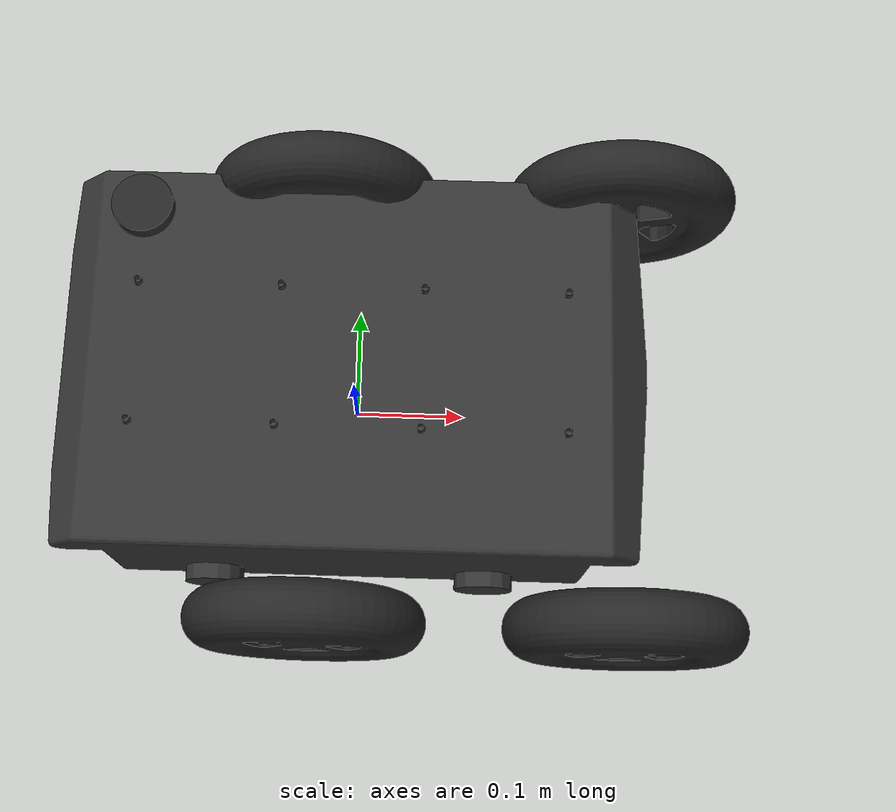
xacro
<?xml version="1.0"?>
<robot name="moonbuggy" xmlns:xacro="http://www.ros.org/wiki/xacro">
  <xacro:property name="PI" value="3.1415926535897931" />

  <xacro:property name="wheelbase" value="0.262" />
  <xacro:property name="track" value="0.37559" />
  <xacro:property name="wheel_vertical_offset" value="0.0345" />
  <xacro:property name="footprint_vertical_offset" value="-0.0655" />

  <xacro:property name="wheel_radius" value="0.046" />
  <xacro:property name="wheel_width" value="0.035" />

  <xacro:property name="chassis_length" value="0.130" />
  <xacro:property name="chassis_width" value="0.140" />
  <xacro:property name="chassis_height" value="0.02" />

  <xacro:property name="dummy_inertia" value="1e-09"/>

  <xacro:property name="mount_spacing" value="0.120" />

  <material name="dark_grey"><color rgba="0.2 0.2 0.2 1.0" /></material>
  <material name="light_grey"><color rgba="0.4 0.4 0.4 1.0" /></material>
  <material name="yellow"><color rgba="0.8 0.8 0.0 1.0" /></material>
  <material name="black"><color rgba="0.15 0.15 0.15 1.0" /></material>

  <xacro:macro name="wheel" params="prefix *joint_pose">

    <link name="${prefix}_wheel_link">
      <visual>
        <origin xyz="0 0 0" rpy="${PI/2} 0 0"/>
        <geometry>
          <mesh filename="package://jackal_description/meshes/jackal-wheel.stl"/>
        </geometry>
        <material name="black" />
      </visual>
      <collision>
        <origin xyz="0 0 0" rpy="${PI/2} 0 0"/>
        <geometry>
          <cylinder radius="${wheel_radius}" length="${wheel_width}"/>
        </geometry>
      </collision>
      <inertial>
        <origin xyz="-0.0001 0 -0.00001" rpy="0 0 0"/>
        <mass value="0.477"/>
        <inertia
          ixx="0.0024" ixy="0" ixz="0"
          iyy="0.0013" iyz="0"
          izz="0.0013"/>
      </inertial>
    </link>

    <gazebo reference="${prefix}_wheel_link">
      <material>Gazebo/DarkGrey</material>
    </gazebo>

    <joint name="${prefix}_wheel" type="continuous">
      <parent link="chassis_link"/>
      <child link="${prefix}_wheel_link" />
      <xacro:insert_block name="joint_pose" />
      <axis xyz="0 1 0" />
    </joint>

    <!-- In reality, Jackal has only two motors, one per side. However, it's more
         straightforward for Gazebo to simulate as if there's an actuator per wheel. -->
    <transmission name="${prefix}_wheel_trans">
      <type>transmission_interface/SimpleTransmission</type>
      <joint name="${prefix}_wheel">
        <hardwareInterface>VelocityJointInterface</hardwareInterface>
      </joint>
      <actuator name="${prefix}_actuator">
        <mechanicalReduction>1</mechanicalReduction>
      </actuator>
    </transmission>
  </xacro:macro>

  <xacro:wheel prefix="front_left">
    <origin xyz="${wheelbase/2} ${track/2} ${wheel_vertical_offset}" rpy="0 0 0" />
  </xacro:wheel>
  <xacro:wheel prefix="front_right">
    <origin xyz="${wheelbase/2} ${-track/2} ${wheel_vertical_offset}" rpy="0 0 0" />
  </xacro:wheel>
  <xacro:wheel prefix="rear_left">
    <origin xyz="${-wheelbase/2} ${track/2} ${wheel_vertical_offset}" rpy="0 0 0" />
  </xacro:wheel>
  <xacro:wheel prefix="rear_right">
    <origin xyz="${-wheelbase/2} ${-track/2} ${wheel_vertical_offset}" rpy="0 0 0" />
  </xacro:wheel>

  <link name="base_link"></link>

  <joint name="base_link_joint" type="fixed">
    <origin xyz="0 0 0" rpy="0 0 0" />
    <parent link="base_link"/>
    <child link="chassis_link" />
  </joint>

  <link name="chassis_link">
    <visual>
      <origin xyz="0 0 ${footprint_vertical_offset}" rpy="${PI/2} 0 ${PI/2}"/>
      <geometry>
        <mesh filename="package://jackal_description/meshes/jackal-base.stl"/>
      </geometry>
      <material name="dark_grey" />
    </visual>
    <collision>
      <origin xyz="0 0 ${chassis_height/2}"/>
      <geometry>
        <box size="${chassis_length} ${chassis_width} ${chassis_height}"/>
      </geometry>
    </collision>
    <inertial>
      <!-- Center of mass -->
      <origin xyz="0.012  0.002 0.067" rpy="0 0 0"/>
      <mass value="1.523"/>
      <!-- Moments of inertia: ( chassis without wheels ) -->
      <inertia
        ixx="0.3136" ixy="-0.0008" ixz="0.0164"
        iyy="0.3922" iyz="-0.0009"
        izz="0.4485"/>
      </inertial>
  </link>

  <link name="imu_link">
    <inertial>
      <mass value="0.001"/>
      <origin xyz="0 0 0" rpy="0 0 0"/>
      <inertia ixx="${dummy_inertia}" ixy="0.0" ixz="0.0" iyy="${dummy_inertia}" iyz="0.0" izz="${dummy_inertia}"/>
    </inertial>
  </link>
  <joint name="imu_joint" type="fixed">
    <parent link="chassis_link" />
    <child link="imu_link" />
  </joint>

  <!-- TODO: Same note as applies to imu_link -->
  <link name="navsat_link">
    <visual>
      <geometry>
        <cylinder radius="0.026" length="0.016" />
      </geometry>
      <origin xyz="0 0 0.008" />
      <material name="black" />
    </visual>
  </link>
  <joint name="navsat_joint" type="fixed">
    <parent link="chassis_link" />
    <child link="navsat_link" />
    <origin xyz="-0.180 0.126 0.1815" />
  </joint>

  <link name="mid_mount"></link>
  <joint name="mid_mount_joint" type="fixed">
    <parent link="chassis_link" />
    <child link="mid_mount" />
    <origin xyz="0 0 ${chassis_height}" />
  </joint>

  <link name="rear_mount"></link>
  <joint name="rear_mount_joint" type="fixed">
    <parent link="mid_mount" />
    <child link="rear_mount" />
    <origin xyz="${-mount_spacing} 0 0" />
  </joint>

  <link name="front_mount"></link>
  <joint name="front_mount_joint" type="fixed">
    <parent link="mid_mount" />
    <child link="front_mount" />
    <origin xyz="${mount_spacing} 0 0" />
  </joint>

  <link name="base_laser_link"></link>
  <joint name="base_laser_link_joint" type="fixed">
    <parent link="mid_mount"/>
    <child link="base_laser_link"/>
    <origin xyz="0.05 0 0.1"/>
  </joint>

  <link name="camera_link"></link>
  <joint name="camera_link_joint" type="fixed">
    <parent link="mid_mount"/>
    <child link="camera_link"/>
    <origin xyz="0.05 0 0.1"/>
  </joint>

  <link name="map"></link>
  <joint name="map_link_joint" type="fixed">
    <parent link="mid_mount"/>
    <child link="map"/>
    <origin xyz="0 0 0"/>
  </joint>

  <link name="base_footprint"></link>
  <joint name="base_footprint_link_joint" type="fixed">
    <parent link="mid_mount"/>
    <child link="base_footprint"/>
    <origin xyz="0 0 0"/>
  </joint>
</robot>
